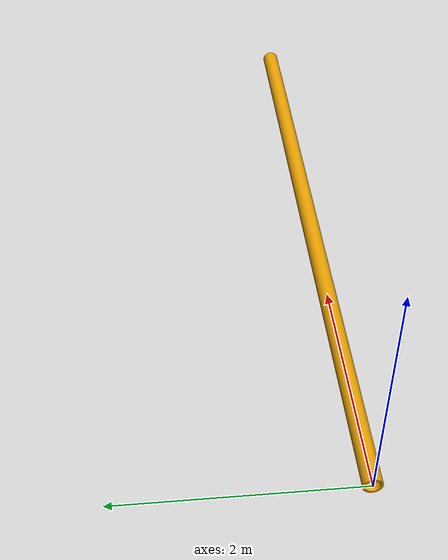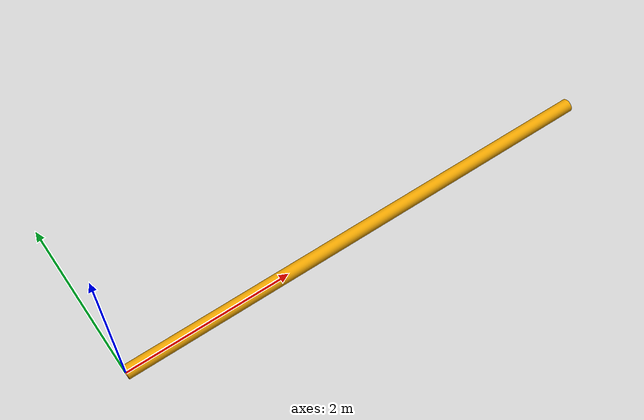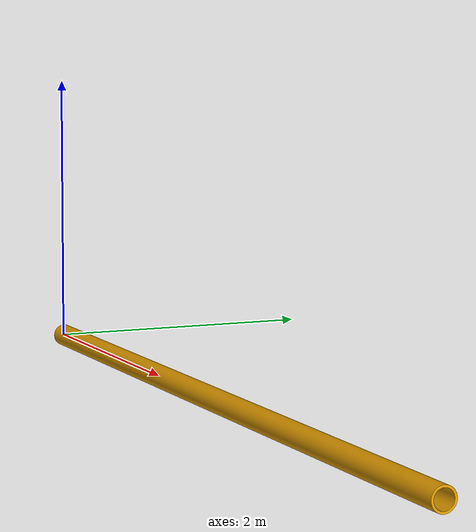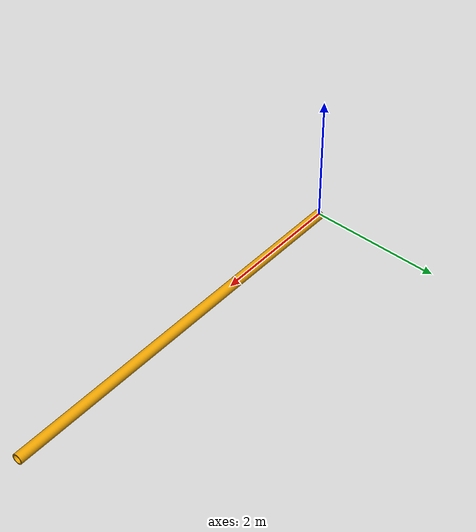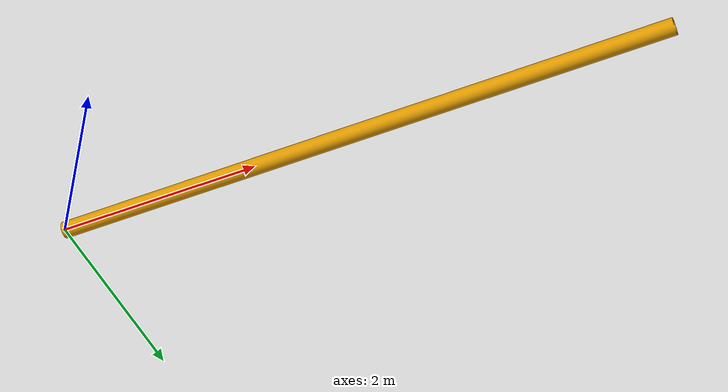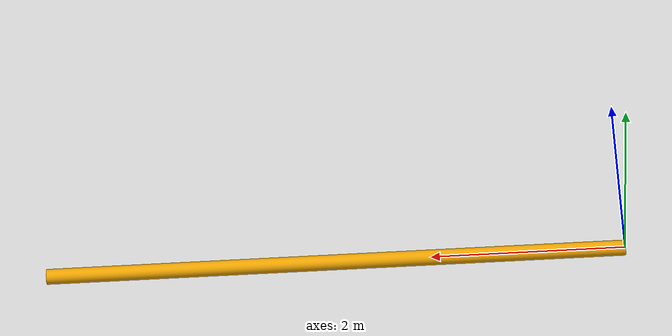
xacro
<?xml version="1.0"?>
<robot xmlns:xacro="http://www.ros.org/wiki/xacro" name="peg" >

	<link name="base_link">
    <inertial>
      <mass value="30" />
      <!-- 6 metri di lunghezza??  1/12 m l^2  ixx and izz matrix inertia wikipedia
       -->
      <inertia ixx="90"  ixy="0"  ixz="0" iyy="0" iyz="0" izz="90" />
    </inertial>
    <visual>
      <origin rpy="0 0 0" xyz="-0.0 0 0.0"/>
      <geometry>
        <mesh filename="objects/pipecreo.obj"/>
      </geometry>
    </visual>
  </link>

</robot>
